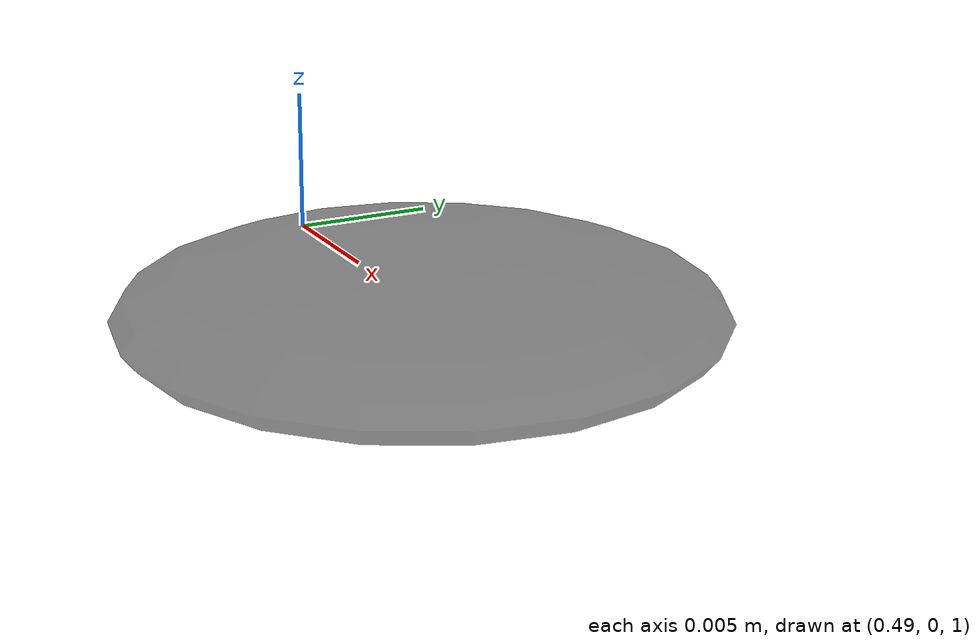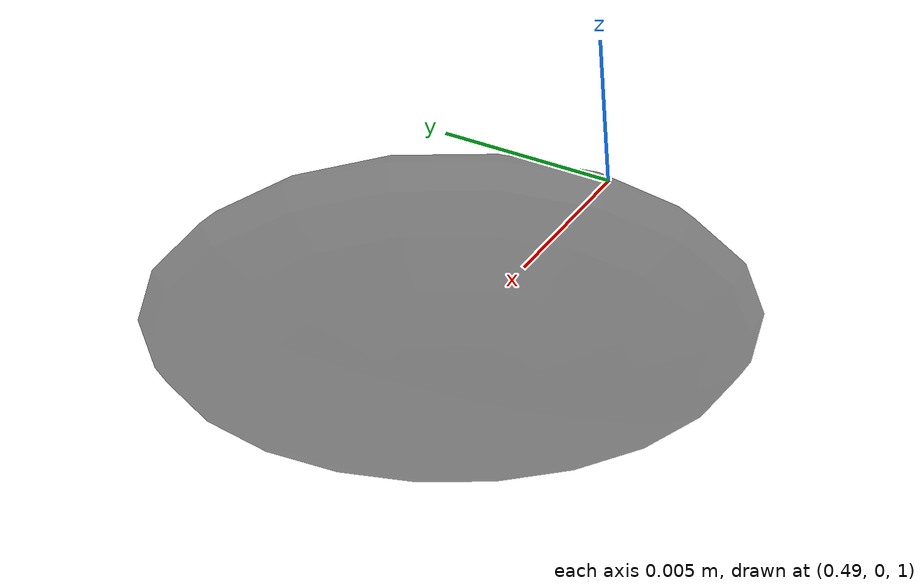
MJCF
<!-- Note: site positions here can be ignored as they are initialized in the environment with the positions stated in the config -->
<mujoco model="polishing_sites">
    <worldbody>
        <body name="site_1" pos="0.5 0 1">
          <geom name="site_1" type="ellipsoid" size=".01 .01 .002" mass="0.1" rgba="0 0 0 .5" contype="0" conaffinity="0"/>
        </body>
        <body name="site_2" pos="0.5 0 1">
          <geom name="site_2" type="ellipsoid" size=".01 .01 .002" mass="0.1" rgba="0 0 0 .5" contype="0" conaffinity="0"/>
        </body>
        <body name="site_3" pos="0.5 0 1">
          <geom name="site_3" type="ellipsoid" size=".01 .01 .002" mass="0.1" rgba="0 0 0 .5" contype="0" conaffinity="0"/>
        </body>
        <body name="site_4" pos="0.5 0 1">
          <geom name="site_4" type="ellipsoid" size=".01 .01 .002" mass="0.1" rgba="0 0 0 .5" contype="0" conaffinity="0"/>
        </body>
        <body name="site_5" pos="0.5 0 1">
          <geom name="site_5" type="ellipsoid" size=".01 .01 .002" mass="0.1" rgba="0 0 0 .5" contype="0" conaffinity="0"/>
        </body>
        <body name="site_6" pos="0.5 0 1">
          <geom name="site_6" type="ellipsoid" size=".01 .01 .002" mass="0.1" rgba="0 0 0 .5" contype="0" conaffinity="0"/>
        </body>
        <body name="site_7" pos="0.5 0 1">
          <geom name="site_7" type="ellipsoid" size=".01 .01 .002" mass="0.1" rgba="0 0 0 .5" contype="0" conaffinity="0"/>
        </body>
        <body name="site_8" pos="0.5 0 1">
          <geom name="site_8" type="ellipsoid" size=".01 .01 .002" mass="0.1" rgba="0 0 0 .5" contype="0" conaffinity="0"/>
        </body>
        <body name="site_9" pos="0.5 0 1">
          <geom name="site_9" type="ellipsoid" size=".01 .01 .002" mass="0.1" rgba="0 0 0 .5" contype="0" conaffinity="0"/>
        </body>
    </worldbody>
</mujoco>
